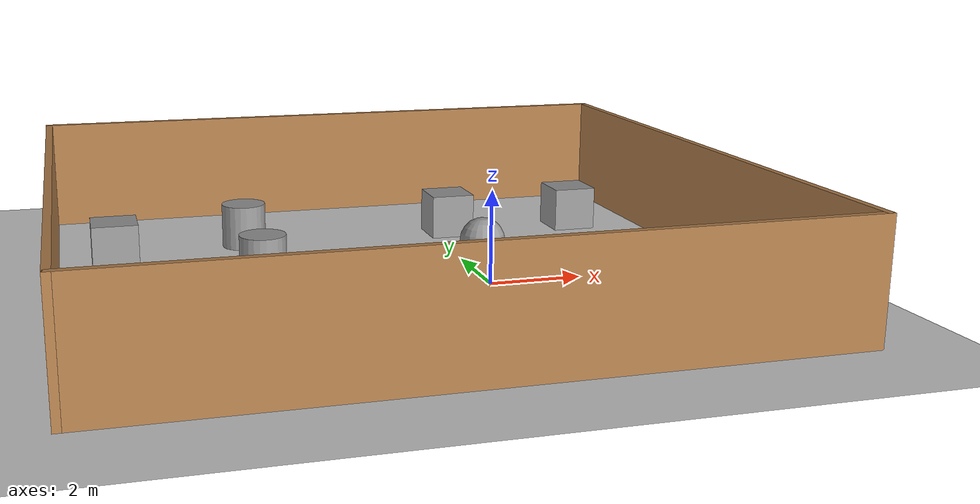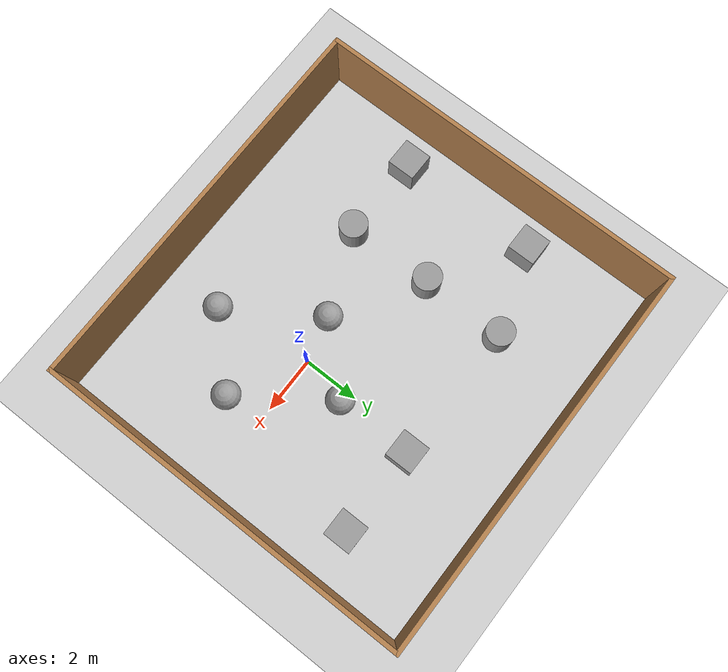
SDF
<sdf version="1.7">
 <world name="default">
  <light name="sun" type="directional">
   <pose>0 0 10 0 -0 0</pose>
   <diffuse>0.8 0.8 0.8 1</diffuse>
   <specular>0.2 0.2 0.2 1</specular>
   <attenuation>
    <range>1000</range>
    <constant>0.9</constant>
    <linear>0.01</linear>
    <quadratic>0.001</quadratic>
   </attenuation>
   <direction>-0.5 0.1 -0.9</direction>
   <spot><inner_angle>0</inner_angle><outer_angle>0</outer_angle><falloff>0</falloff></spot>
  </light>
  <model name="ground_plane">
   <static>1</static>
   <link name="link">
    <collision name="collision">
     <geometry><plane><normal>0 0 1</normal><size>100 100</size></plane></geometry>
     <surface>
      <contact><collide_bitmask>65535</collide_bitmask></contact>
      <friction><ode><mu>100</mu><mu2>50</mu2></ode></friction>
     </surface>
    </collision>
    <visual name="visual">
     <cast_shadows>0</cast_shadows>
     <geometry><plane><normal>0 0 1</normal><size>100 100</size></plane></geometry>
     <material>
      <script><uri>file://media/materials/scripts/gazebo.material</uri><name>Gazebo/Grey</name></script>
     </material>
    </visual>
   </link>
  </model>
  <physics type="ode">
   <real_time_update_rate>1000</real_time_update_rate>
   <max_step_size>0.001</max_step_size>
   <real_time_factor>1</real_time_factor>
   <ode>
    <solver>
     <type>quick</type>
     <iters>150</iters>
     <precon_iters>0</precon_iters>
     <sor>1.4</sor>
     <use_dynamic_moi_rescaling>1</use_dynamic_moi_rescaling>
    </solver>
    <constraints>
     <cfm>1e-05</cfm>
     <erp>0.2</erp>
     <contact_max_correcting_vel>2000</contact_max_correcting_vel>
     <contact_surface_layer>0.01</contact_surface_layer>
    </constraints>
   </ode>
  </physics>
  <scene><ambient>0.4 0.4 0.4 1</ambient><background>0.7 0.7 0.7 1</background><shadows>1</shadows></scene>
  <gravity>0 0 -9.8</gravity>
  <magnetic_field>6e-06 2.3e-05 -4.2e-05</magnetic_field>
  <atmosphere type="adiabatic"/>
  <spherical_coordinates>
   <surface_model>EARTH_WGS84</surface_model>
   <latitude_deg>0</latitude_deg>
   <longitude_deg>0</longitude_deg>
   <elevation>0</elevation>
   <heading_deg>0</heading_deg>
  </spherical_coordinates>
  <model name="biandui_house_0">
   <pose>-1.75072 1.03596 0 0 -0 0</pose>
   <link name="Wall_10">
    <collision name="Wall_10_Collision">
     <geometry><box><size>13.5 0.15 2.5</size></box></geometry>
     <pose>0 0 1.25 0 -0 0</pose>
    </collision>
    <visual name="Wall_10_Visual">
     <pose>0 0 1.25 0 -0 0</pose>
     <geometry><box><size>13.5 0.15 2.5</size></box></geometry>
     <material>
      <script><uri>file://media/materials/scripts/gazebo.material</uri><name>Gazebo/Wood</name></script>
      <ambient>1 1 1 1</ambient>
     </material>
     <meta><layer>0</layer></meta>
    </visual>
    <pose>-7.05 -0 0 0 -0 1.5708</pose>
   </link>
   <link name="Wall_7">
    <collision name="Wall_7_Collision">
     <geometry><box><size>14.25 0.15 2.5</size></box></geometry>
     <pose>0 0 1.25 0 -0 0</pose>
    </collision>
    <visual name="Wall_7_Visual">
     <pose>0 0 1.25 0 -0 0</pose>
     <geometry><box><size>14.25 0.15 2.5</size></box></geometry>
     <material>
      <script><uri>file://media/materials/scripts/gazebo.material</uri><name>Gazebo/Wood</name></script>
      <ambient>1 1 1 1</ambient>
     </material>
     <meta><layer>0</layer></meta>
    </visual>
    <pose>-0 6.675 0 0 -0 0</pose>
   </link>
   <link name="Wall_8">
    <collision name="Wall_8_Collision">
     <geometry><box><size>13.5 0.15 2.5</size></box></geometry>
     <pose>0 0 1.25 0 -0 0</pose>
    </collision>
    <visual name="Wall_8_Visual">
     <pose>0 0 1.25 0 -0 0</pose>
     <geometry><box><size>13.5 0.15 2.5</size></box></geometry>
     <material>
      <script><uri>file://media/materials/scripts/gazebo.material</uri><name>Gazebo/Wood</name></script>
      <ambient>1 1 1 1</ambient>
     </material>
     <meta><layer>0</layer></meta>
    </visual>
    <pose>7.05 -0 0 0 -0 -1.5708</pose>
   </link>
   <link name="Wall_9">
    <collision name="Wall_9_Collision">
     <geometry><box><size>14.25 0.15 2.5</size></box></geometry>
     <pose>0 0 1.25 0 -0 0</pose>
    </collision>
    <visual name="Wall_9_Visual">
     <pose>0 0 1.25 0 -0 0</pose>
     <geometry><box><size>14.25 0.15 2.5</size></box></geometry>
     <material>
      <script><uri>file://media/materials/scripts/gazebo.material</uri><name>Gazebo/Wood</name></script>
      <ambient>1 1 1 1</ambient>
     </material>
     <meta><layer>0</layer></meta>
    </visual>
    <pose>-0 -6.675 0 0 -0 3.14159</pose>
   </link>
   <static>1</static>
  </model>
  <model name="unit_sphere">
   <pose>0.436218 -3.46021 0.5 0 -0 0</pose>
   <link name="link">
    <inertial>
     <mass>1</mass>
     <inertia><ixx>0.1</ixx><ixy>0</ixy><ixz>0</ixz><iyy>0.1</iyy><iyz>0</iyz><izz>0.1</izz></inertia>
    </inertial>
    <collision name="collision"><geometry><sphere><radius>0.5</radius></sphere></geometry></collision>
    <visual name="visual">
     <geometry><sphere><radius>0.5</radius></sphere></geometry>
     <material>
      <script><name>Gazebo/Grey</name><uri>file://media/materials/scripts/gazebo.material</uri></script>
     </material>
    </visual>
   </link>
  </model>
  <model name="unit_sphere_0">
   <pose>2.53267 -1.35461 0.5 0 -0 0</pose>
   <link name="link">
    <inertial>
     <mass>1</mass>
     <inertia><ixx>0.1</ixx><ixy>0</ixy><ixz>0</ixz><iyy>0.1</iyy><iyz>0</iyz><izz>0.1</izz></inertia>
    </inertial>
    <collision name="collision"><geometry><sphere><radius>0.5</radius></sphere></geometry></collision>
    <visual name="visual">
     <geometry><sphere><radius>0.5</radius></sphere></geometry>
     <material>
      <script><name>Gazebo/Grey</name><uri>file://media/materials/scripts/gazebo.material</uri></script>
     </material>
    </visual>
   </link>
  </model>
  <model name="unit_sphere_1">
   <pose>0.380525 1.6807 0.5 0 -0 0</pose>
   <link name="link">
    <inertial>
     <mass>1</mass>
     <inertia><ixx>0.1</ixx><ixy>0</ixy><ixz>0</ixz><iyy>0.1</iyy><iyz>0</iyz><izz>0.1</izz></inertia>
    </inertial>
    <collision name="collision"><geometry><sphere><radius>0.5</radius></sphere></geometry></collision>
    <visual name="visual">
     <geometry><sphere><radius>0.5</radius></sphere></geometry>
     <material>
      <script><name>Gazebo/Grey</name><uri>file://media/materials/scripts/gazebo.material</uri></script>
     </material>
    </visual>
   </link>
  </model>
  <model name="unit_sphere_2">
   <pose>-1.5657 -0.367205 0.5 0 -0 0</pose>
   <link name="link">
    <inertial>
     <mass>1</mass>
     <inertia><ixx>0.1</ixx><ixy>0</ixy><ixz>0</ixz><iyy>0.1</iyy><iyz>0</iyz><izz>0.1</izz></inertia>
    </inertial>
    <collision name="collision"><geometry><sphere><radius>0.5</radius></sphere></geometry></collision>
    <visual name="visual">
     <geometry><sphere><radius>0.5</radius></sphere></geometry>
     <material>
      <script><name>Gazebo/Grey</name><uri>file://media/materials/scripts/gazebo.material</uri></script>
     </material>
    </visual>
   </link>
  </model>
  <model name="unit_cylinder">
   <pose>-4.49329 -1.58978 0.499997 -4e-06 -4e-06 -0</pose>
   <link name="link">
    <inertial>
     <mass>1</mass>
     <inertia><ixx>0.145833</ixx><ixy>0</ixy><ixz>0</ixz><iyy>0.145833</iyy><iyz>0</iyz><izz>0.125</izz></inertia>
    </inertial>
    <collision name="collision">
     <geometry><cylinder><radius>0.5</radius><length>1</length></cylinder></geometry>
    </collision>
    <visual name="visual">
     <geometry><cylinder><radius>0.5</radius><length>1</length></cylinder></geometry>
     <material>
      <script><name>Gazebo/Grey</name><uri>file://media/materials/scripts/gazebo.material</uri></script>
     </material>
    </visual>
   </link>
  </model>
  <model name="unit_cylinder_0">
   <pose>-4.55698 1.47173 0.499993 4e-06 4e-06 -0</pose>
   <link name="link">
    <inertial>
     <mass>1</mass>
     <inertia><ixx>0.145833</ixx><ixy>0</ixy><ixz>0</ixz><iyy>0.145833</iyy><iyz>0</iyz><izz>0.125</izz></inertia>
    </inertial>
    <collision name="collision">
     <geometry><cylinder><radius>0.5</radius><length>1</length></cylinder></geometry>
    </collision>
    <visual name="visual">
     <geometry><cylinder><radius>0.5</radius><length>1</length></cylinder></geometry>
     <material>
      <script><name>Gazebo/Grey</name><uri>file://media/materials/scripts/gazebo.material</uri></script>
     </material>
    </visual>
   </link>
  </model>
  <model name="unit_cylinder_1">
   <pose>-4.53688 4.46379 0.499997 -4e-06 -4e-06 -0</pose>
   <link name="link">
    <inertial>
     <mass>1</mass>
     <inertia><ixx>0.145833</ixx><ixy>0</ixy><ixz>0</ixz><iyy>0.145833</iyy><iyz>0</iyz><izz>0.125</izz></inertia>
    </inertial>
    <collision name="collision">
     <geometry><cylinder><radius>0.5</radius><length>1</length></cylinder></geometry>
    </collision>
    <visual name="visual">
     <geometry><cylinder><radius>0.5</radius><length>1</length></cylinder></geometry>
     <material>
      <script><name>Gazebo/Grey</name><uri>file://media/materials/scripts/gazebo.material</uri></script>
     </material>
    </visual>
   </link>
  </model>
  <model name="unit_box">
   <pose>3.52609 4.40556 0.5 0 -0 0</pose>
   <link name="link">
    <inertial>
     <mass>1</mass>
     <inertia>
      <ixx>0.166667</ixx>
      <ixy>0</ixy>
      <ixz>0</ixz>
      <iyy>0.166667</iyy>
      <iyz>0</iyz>
      <izz>0.166667</izz>
     </inertia>
    </inertial>
    <collision name="collision"><geometry><box><size>1 1 1</size></box></geometry></collision>
    <visual name="visual">
     <geometry><box><size>1 1 1</size></box></geometry>
     <material>
      <script><name>Gazebo/Grey</name><uri>file://media/materials/scripts/gazebo.material</uri></script>
     </material>
    </visual>
   </link>
  </model>
  <model name="unit_box_0">
   <pose>0.410596 4.42392 0.5 0 -0 0</pose>
   <link name="link">
    <inertial>
     <mass>1</mass>
     <inertia>
      <ixx>0.166667</ixx>
      <ixy>0</ixy>
      <ixz>0</ixz>
      <iyy>0.166667</iyy>
      <iyz>0</iyz>
      <izz>0.166667</izz>
     </inertia>
    </inertial>
    <collision name="collision"><geometry><box><size>1 1 1</size></box></geometry></collision>
    <visual name="visual">
     <geometry><box><size>1 1 1</size></box></geometry>
     <material>
      <script><name>Gazebo/Grey</name><uri>file://media/materials/scripts/gazebo.material</uri></script>
     </material>
    </visual>
   </link>
  </model>
  <model name="unit_box_1">
   <pose>-7.52422 3.45683 0.5 0 -0 0</pose>
   <link name="link">
    <inertial>
     <mass>1</mass>
     <inertia>
      <ixx>0.166667</ixx>
      <ixy>0</ixy>
      <ixz>0</ixz>
      <iyy>0.166667</iyy>
      <iyz>0</iyz>
      <izz>0.166667</izz>
     </inertia>
    </inertial>
    <collision name="collision"><geometry><box><size>1 1 1</size></box></geometry></collision>
    <visual name="visual">
     <geometry><box><size>1 1 1</size></box></geometry>
     <material>
      <script><name>Gazebo/Grey</name><uri>file://media/materials/scripts/gazebo.material</uri></script>
     </material>
    </visual>
   </link>
  </model>
  <model name="unit_box_2">
   <pose>-7.47765 -1.51265 0.5 0 -0 0</pose>
   <link name="link">
    <inertial>
     <mass>1</mass>
     <inertia>
      <ixx>0.166667</ixx>
      <ixy>0</ixy>
      <ixz>0</ixz>
      <iyy>0.166667</iyy>
      <iyz>0</iyz>
      <izz>0.166667</izz>
     </inertia>
    </inertial>
    <collision name="collision"><geometry><box><size>1 1 1</size></box></geometry></collision>
    <visual name="visual">
     <geometry><box><size>1 1 1</size></box></geometry>
     <material>
      <script><name>Gazebo/Grey</name><uri>file://media/materials/scripts/gazebo.material</uri></script>
     </material>
    </visual>
   </link>
  </model>
 </world>
</sdf>
